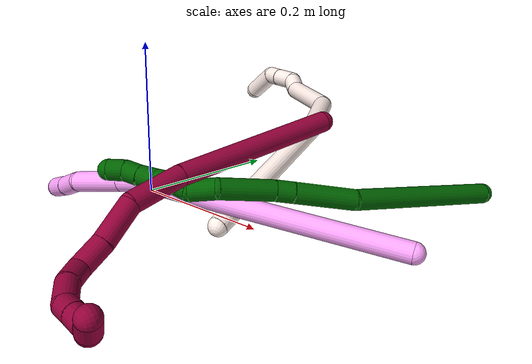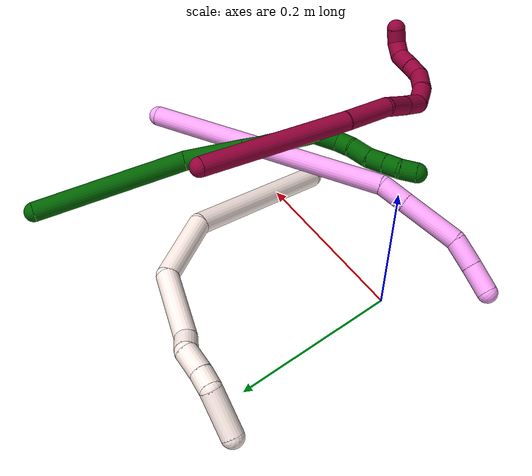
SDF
<sdf version="1.7">
 <world name="default">
  <model name="4">
   <static>0</static>
   <link name="4">
    <collision name="collision-cylinder-e_1_1_4">
     <pose>-0.077343 -0.04513 -0.132785 2.81397 -0.503981 -2.00013</pose>
     <geometry><cylinder><radius>0.0125</radius><length>0.320316</length></cylinder></geometry>
     <surface>
      <friction><ode><mu>1.16</mu><mu2>1.16</mu2><slip1>0</slip1><slip2>0</slip2></ode></friction>
      <contact><ode><kp>1e+06</kp><kd>1</kd><max_vel>0</max_vel><min_depth>0.001</min_depth></ode></contact>
     </surface>
    </collision>
    <visual name="visual-cylinder-e_1_1_4">
     <pose>-0.077343 -0.04513 -0.132785 2.81397 -0.503981 -2.00013</pose>
     <geometry><cylinder><radius>0.0125</radius><length>0.320316</length></cylinder></geometry>
     <material><ambient>1 0.65098 0.996078 1</ambient></material>
    </visual>
    <collision name="collision-cylinder-e_2_4_5">
     <pose>-0.159043 -0.091086 -0.282486 3.09274 -0.251879 -2.76038</pose>
     <geometry><cylinder><radius>0.0125</radius><length>0.034974</length></cylinder></geometry>
     <surface>
      <friction><ode><mu>1.16</mu><mu2>1.16</mu2><slip1>0</slip1><slip2>0</slip2></ode></friction>
      <contact><ode><kp>1e+06</kp><kd>1</kd><max_vel>0</max_vel><min_depth>0.001</min_depth></ode></contact>
     </surface>
    </collision>
    <visual name="visual-cylinder-e_2_4_5">
     <pose>-0.159043 -0.091086 -0.282486 3.09274 -0.251879 -2.76038</pose>
     <geometry><cylinder><radius>0.0125</radius><length>0.034974</length></cylinder></geometry>
     <material><ambient>1 0.65098 0.996078 1</ambient></material>
    </visual>
    <collision name="collision-cylinder-e_3_5_6">
     <pose>-0.172219 -0.09399 -0.335111 3.0835 -0.241682 -2.67186</pose>
     <geometry><cylinder><radius>0.0125</radius><length>0.073683</length></cylinder></geometry>
     <surface>
      <friction><ode><mu>1.16</mu><mu2>1.16</mu2><slip1>0</slip1><slip2>0</slip2></ode></friction>
      <contact><ode><kp>1e+06</kp><kd>1</kd><max_vel>0</max_vel><min_depth>0.001</min_depth></ode></contact>
     </surface>
    </collision>
    <visual name="visual-cylinder-e_3_5_6">
     <pose>-0.172219 -0.09399 -0.335111 3.0835 -0.241682 -2.67186</pose>
     <geometry><cylinder><radius>0.0125</radius><length>0.073683</length></cylinder></geometry>
     <material><ambient>1 0.65098 0.996078 1</ambient></material>
    </visual>
    <collision name="collision-cylinder-e_4_6_7">
     <pose>-0.181843 -0.091511 -0.387962 -2.88178 -0.045425 0.344324</pose>
     <geometry><cylinder><radius>0.0125</radius><length>0.035509</length></cylinder></geometry>
     <surface>
      <friction><ode><mu>1.16</mu><mu2>1.16</mu2><slip1>0</slip1><slip2>0</slip2></ode></friction>
      <contact><ode><kp>1e+06</kp><kd>1</kd><max_vel>0</max_vel><min_depth>0.001</min_depth></ode></contact>
     </surface>
    </collision>
    <visual name="visual-cylinder-e_4_6_7">
     <pose>-0.181843 -0.091511 -0.387962 -2.88178 -0.045425 0.344324</pose>
     <geometry><cylinder><radius>0.0125</radius><length>0.035509</length></cylinder></geometry>
     <material><ambient>1 0.65098 0.996078 1</ambient></material>
    </visual>
    <collision name="collision-cylinder-e_5_7_2">
     <pose>-0.184832 -0.081291 -0.421793 -2.81445 -0.123241 0.715472</pose>
     <geometry><cylinder><radius>0.0125</radius><length>0.035519</length></cylinder></geometry>
     <surface>
      <friction><ode><mu>1.16</mu><mu2>1.16</mu2><slip1>0</slip1><slip2>0</slip2></ode></friction>
      <contact><ode><kp>1e+06</kp><kd>1</kd><max_vel>0</max_vel><min_depth>0.001</min_depth></ode></contact>
     </surface>
    </collision>
    <visual name="visual-cylinder-e_5_7_2">
     <pose>-0.184832 -0.081291 -0.421793 -2.81445 -0.123241 0.715472</pose>
     <geometry><cylinder><radius>0.0125</radius><length>0.035519</length></cylinder></geometry>
     <material><ambient>1 0.65098 0.996078 1</ambient></material>
    </visual>
    <collision name="collision-sphere-2">
     <pose>-0.187015 -0.075627 -0.438483 0 -0 0</pose>
     <geometry><sphere><radius>0.0125</radius></sphere></geometry>
     <surface>
      <friction><ode><mu>1.16</mu><mu2>1.16</mu2><slip1>0</slip1><slip2>0</slip2></ode></friction>
      <contact><ode><kp>1e+06</kp><kd>1</kd><max_vel>0</max_vel><min_depth>0.001</min_depth></ode></contact>
     </surface>
    </collision>
    <visual name="visual-sphere-2">
     <pose>-0.187015 -0.075627 -0.438483 0 -0 0</pose>
     <geometry><sphere><radius>0.0125</radius></sphere></geometry>
     <material><ambient>1 0.65098 0.996078 1</ambient></material>
    </visual>
    <collision name="collision-sphere-7">
     <pose>-0.182649 -0.086954 -0.405103 0 -0 0</pose>
     <geometry><sphere><radius>0.0125</radius></sphere></geometry>
     <surface>
      <friction><ode><mu>1.16</mu><mu2>1.16</mu2><slip1>0</slip1><slip2>0</slip2></ode></friction>
      <contact><ode><kp>1e+06</kp><kd>1</kd><max_vel>0</max_vel><min_depth>0.001</min_depth></ode></contact>
     </surface>
    </collision>
    <visual name="visual-sphere-7">
     <pose>-0.182649 -0.086954 -0.405103 0 -0 0</pose>
     <geometry><sphere><radius>0.0125</radius></sphere></geometry>
     <material><ambient>1 0.65098 0.996078 1</ambient></material>
    </visual>
    <collision name="collision-sphere-6">
     <pose>-0.181037 -0.096067 -0.370821 0 -0 0</pose>
     <geometry><sphere><radius>0.0125</radius></sphere></geometry>
     <surface>
      <friction><ode><mu>1.16</mu><mu2>1.16</mu2><slip1>0</slip1><slip2>0</slip2></ode></friction>
      <contact><ode><kp>1e+06</kp><kd>1</kd><max_vel>0</max_vel><min_depth>0.001</min_depth></ode></contact>
     </surface>
    </collision>
    <visual name="visual-sphere-6">
     <pose>-0.181037 -0.096067 -0.370821 0 -0 0</pose>
     <geometry><sphere><radius>0.0125</radius></sphere></geometry>
     <material><ambient>1 0.65098 0.996078 1</ambient></material>
    </visual>
    <collision name="collision-sphere-5">
     <pose>-0.163402 -0.091913 -0.299401 0 -0 0</pose>
     <geometry><sphere><radius>0.0125</radius></sphere></geometry>
     <surface>
      <friction><ode><mu>1.16</mu><mu2>1.16</mu2><slip1>0</slip1><slip2>0</slip2></ode></friction>
      <contact><ode><kp>1e+06</kp><kd>1</kd><max_vel>0</max_vel><min_depth>0.001</min_depth></ode></contact>
     </surface>
    </collision>
    <visual name="visual-sphere-5">
     <pose>-0.163402 -0.091913 -0.299401 0 -0 0</pose>
     <geometry><sphere><radius>0.0125</radius></sphere></geometry>
     <material><ambient>1 0.65098 0.996078 1</ambient></material>
    </visual>
    <collision name="collision-sphere-1">
     <geometry><sphere><radius>0.0125</radius></sphere></geometry>
     <surface>
      <friction><ode><mu>1.16</mu><mu2>1.16</mu2><slip1>0</slip1><slip2>0</slip2></ode></friction>
      <contact><ode><kp>1e+06</kp><kd>1</kd><max_vel>0</max_vel><min_depth>0.001</min_depth></ode></contact>
     </surface>
    </collision>
    <visual name="visual-sphere-1">
     <geometry><sphere><radius>0.0125</radius></sphere></geometry>
     <material><ambient>1 0.65098 0.996078 1</ambient></material>
    </visual>
    <collision name="collision-sphere-4">
     <pose>-0.154685 -0.090259 -0.265571 0 -0 0</pose>
     <geometry><sphere><radius>0.0125</radius></sphere></geometry>
     <surface>
      <friction><ode><mu>1.16</mu><mu2>1.16</mu2><slip1>0</slip1><slip2>0</slip2></ode></friction>
      <contact><ode><kp>1e+06</kp><kd>1</kd><max_vel>0</max_vel><min_depth>0.001</min_depth></ode></contact>
     </surface>
    </collision>
    <visual name="visual-sphere-4">
     <pose>-0.154685 -0.090259 -0.265571 0 -0 0</pose>
     <geometry><sphere><radius>0.0125</radius></sphere></geometry>
     <material><ambient>1 0.65098 0.996078 1</ambient></material>
    </visual>
    <inertial>
     <pose>-0.112096 -0.061407 -0.211725 0 -0 0</pose>
     <mass>0.5</mass>
     <inertia>
      <ixx>-0.003248</ixx>
      <ixy>0</ixy>
      <ixz>0</ixz>
      <iyy>-0.000707</iyy>
      <iyz>0</iyz>
      <izz>0.00208</izz>
     </inertia>
    </inertial>
   </link>
   <pose>0.387581 0.052008 0.011565 -0.285764 1.13312 -0.097777</pose>
  </model>
  <model name="6">
   <static>0</static>
   <link name="6">
    <collision name="collision-cylinder-e_1_1_4">
     <pose>-0.022543 -0.089345 -0.03146 1.90935 -0.233645 -0.3285</pose>
     <geometry><cylinder><radius>0.0125</radius><length>0.194735</length></cylinder></geometry>
     <surface>
      <friction><ode><mu>1.16</mu><mu2>1.16</mu2><slip1>0</slip1><slip2>0</slip2></ode></friction>
      <contact><ode><kp>1e+06</kp><kd>1</kd><max_vel>0</max_vel><min_depth>0.001</min_depth></ode></contact>
     </surface>
    </collision>
    <visual name="visual-cylinder-e_1_1_4">
     <pose>-0.022543 -0.089345 -0.03146 1.90935 -0.233645 -0.3285</pose>
     <geometry><cylinder><radius>0.0125</radius><length>0.194735</length></cylinder></geometry>
     <material><ambient>0 0.392157 0.003922 1</ambient></material>
    </visual>
    <collision name="collision-cylinder-e_2_4_5">
     <pose>-0.061493 -0.211787 -0.069842 1.77697 -0.451762 -0.551275</pose>
     <geometry><cylinder><radius>0.0125</radius><length>0.075168</length></cylinder></geometry>
     <surface>
      <friction><ode><mu>1.16</mu><mu2>1.16</mu2><slip1>0</slip1><slip2>0</slip2></ode></friction>
      <contact><ode><kp>1e+06</kp><kd>1</kd><max_vel>0</max_vel><min_depth>0.001</min_depth></ode></contact>
     </surface>
    </collision>
    <visual name="visual-cylinder-e_2_4_5">
     <pose>-0.061493 -0.211787 -0.069842 1.77697 -0.451762 -0.551275</pose>
     <geometry><cylinder><radius>0.0125</radius><length>0.075168</length></cylinder></geometry>
     <material><ambient>0 0.392157 0.003922 1</ambient></material>
    </visual>
    <collision name="collision-cylinder-e_3_5_6">
     <pose>-0.08304 -0.254349 -0.07882 1.78474 -0.487901 -0.599012</pose>
     <geometry><cylinder><radius>0.0125</radius><length>0.021929</length></cylinder></geometry>
     <surface>
      <friction><ode><mu>1.16</mu><mu2>1.16</mu2><slip1>0</slip1><slip2>0</slip2></ode></friction>
      <contact><ode><kp>1e+06</kp><kd>1</kd><max_vel>0</max_vel><min_depth>0.001</min_depth></ode></contact>
     </surface>
    </collision>
    <visual name="visual-cylinder-e_3_5_6">
     <pose>-0.08304 -0.254349 -0.07882 1.78474 -0.487901 -0.599012</pose>
     <geometry><cylinder><radius>0.0125</radius><length>0.021929</length></cylinder></geometry>
     <material><ambient>0 0.392157 0.003922 1</ambient></material>
    </visual>
    <collision name="collision-cylinder-e_4_6_7">
     <pose>-0.100193 -0.293712 -0.089723 1.85848 -0.36773 -0.488001</pose>
     <geometry><cylinder><radius>0.0125</radius><length>0.066828</length></cylinder></geometry>
     <surface>
      <friction><ode><mu>1.16</mu><mu2>1.16</mu2><slip1>0</slip1><slip2>0</slip2></ode></friction>
      <contact><ode><kp>1e+06</kp><kd>1</kd><max_vel>0</max_vel><min_depth>0.001</min_depth></ode></contact>
     </surface>
    </collision>
    <visual name="visual-cylinder-e_4_6_7">
     <pose>-0.100193 -0.293712 -0.089723 1.85848 -0.36773 -0.488001</pose>
     <geometry><cylinder><radius>0.0125</radius><length>0.066828</length></cylinder></geometry>
     <material><ambient>0 0.392157 0.003922 1</ambient></material>
    </visual>
    <collision name="collision-cylinder-e_5_7_8">
     <pose>-0.124692 -0.332111 -0.103706 2.11427 -0.898897 -1.41479</pose>
     <geometry><cylinder><radius>0.0125</radius><length>0.031909</length></cylinder></geometry>
     <surface>
      <friction><ode><mu>1.16</mu><mu2>1.16</mu2><slip1>0</slip1><slip2>0</slip2></ode></friction>
      <contact><ode><kp>1e+06</kp><kd>1</kd><max_vel>0</max_vel><min_depth>0.001</min_depth></ode></contact>
     </surface>
    </collision>
    <visual name="visual-cylinder-e_5_7_8">
     <pose>-0.124692 -0.332111 -0.103706 2.11427 -0.898897 -1.41479</pose>
     <geometry><cylinder><radius>0.0125</radius><length>0.031909</length></cylinder></geometry>
     <material><ambient>0 0.392157 0.003922 1</ambient></material>
    </visual>
    <collision name="collision-cylinder-e_6_8_9">
     <pose>-0.146624 -0.344657 -0.107233 1.19232 -1.13896 -0.819622</pose>
     <geometry><cylinder><radius>0.0125</radius><length>0.020801</length></cylinder></geometry>
     <surface>
      <friction><ode><mu>1.16</mu><mu2>1.16</mu2><slip1>0</slip1><slip2>0</slip2></ode></friction>
      <contact><ode><kp>1e+06</kp><kd>1</kd><max_vel>0</max_vel><min_depth>0.001</min_depth></ode></contact>
     </surface>
    </collision>
    <visual name="visual-cylinder-e_6_8_9">
     <pose>-0.146624 -0.344657 -0.107233 1.19232 -1.13896 -0.819622</pose>
     <geometry><cylinder><radius>0.0125</radius><length>0.020801</length></cylinder></geometry>
     <material><ambient>0 0.392157 0.003922 1</ambient></material>
    </visual>
    <collision name="collision-cylinder-e_7_9_10">
     <pose>-0.168406 -0.352492 -0.10598 1.66446 -1.27142 -1.36217</pose>
     <geometry><cylinder><radius>0.0125</radius><length>0.02582</length></cylinder></geometry>
     <surface>
      <friction><ode><mu>1.16</mu><mu2>1.16</mu2><slip1>0</slip1><slip2>0</slip2></ode></friction>
      <contact><ode><kp>1e+06</kp><kd>1</kd><max_vel>0</max_vel><min_depth>0.001</min_depth></ode></contact>
     </surface>
    </collision>
    <visual name="visual-cylinder-e_7_9_10">
     <pose>-0.168406 -0.352492 -0.10598 1.66446 -1.27142 -1.36217</pose>
     <geometry><cylinder><radius>0.0125</radius><length>0.02582</length></cylinder></geometry>
     <material><ambient>0 0.392157 0.003922 1</ambient></material>
    </visual>
    <collision name="collision-cylinder-e_8_10_11">
     <pose>-0.190323 -0.361807 -0.10668 1.63287 -1.04703 -1.10163</pose>
     <geometry><cylinder><radius>0.0125</radius><length>0.02213</length></cylinder></geometry>
     <surface>
      <friction><ode><mu>1.16</mu><mu2>1.16</mu2><slip1>0</slip1><slip2>0</slip2></ode></friction>
      <contact><ode><kp>1e+06</kp><kd>1</kd><max_vel>0</max_vel><min_depth>0.001</min_depth></ode></contact>
     </surface>
    </collision>
    <visual name="visual-cylinder-e_8_10_11">
     <pose>-0.190323 -0.361807 -0.10668 1.63287 -1.04703 -1.10163</pose>
     <geometry><cylinder><radius>0.0125</radius><length>0.02213</length></cylinder></geometry>
     <material><ambient>0 0.392157 0.003922 1</ambient></material>
    </visual>
    <collision name="collision-cylinder-e_9_11_12">
     <pose>-0.208743 -0.37196 -0.10631 1.41797 -1.08341 -0.952983</pose>
     <geometry><cylinder><radius>0.0125</radius><length>0.020007</length></cylinder></geometry>
     <surface>
      <friction><ode><mu>1.16</mu><mu2>1.16</mu2><slip1>0</slip1><slip2>0</slip2></ode></friction>
      <contact><ode><kp>1e+06</kp><kd>1</kd><max_vel>0</max_vel><min_depth>0.001</min_depth></ode></contact>
     </surface>
    </collision>
    <visual name="visual-cylinder-e_9_11_12">
     <pose>-0.208743 -0.37196 -0.10631 1.41797 -1.08341 -0.952983</pose>
     <geometry><cylinder><radius>0.0125</radius><length>0.020007</length></cylinder></geometry>
     <material><ambient>0 0.392157 0.003922 1</ambient></material>
    </visual>
    <collision name="collision-cylinder-e_10_12_2">
     <pose>-0.225414 -0.382915 -0.107942 1.92586 -0.859807 -1.16537</pose>
     <geometry><cylinder><radius>0.0125</radius><length>0.020673</length></cylinder></geometry>
     <surface>
      <friction><ode><mu>1.16</mu><mu2>1.16</mu2><slip1>0</slip1><slip2>0</slip2></ode></friction>
      <contact><ode><kp>1e+06</kp><kd>1</kd><max_vel>0</max_vel><min_depth>0.001</min_depth></ode></contact>
     </surface>
    </collision>
    <visual name="visual-cylinder-e_10_12_2">
     <pose>-0.225414 -0.382915 -0.107942 1.92586 -0.859807 -1.16537</pose>
     <geometry><cylinder><radius>0.0125</radius><length>0.020673</length></cylinder></geometry>
     <material><ambient>0 0.392157 0.003922 1</ambient></material>
    </visual>
    <collision name="collision-sphere-2">
     <pose>-0.233246 -0.38924 -0.110287 0 -0 0</pose>
     <geometry><sphere><radius>0.0125</radius></sphere></geometry>
     <surface>
      <friction><ode><mu>1.16</mu><mu2>1.16</mu2><slip1>0</slip1><slip2>0</slip2></ode></friction>
      <contact><ode><kp>1e+06</kp><kd>1</kd><max_vel>0</max_vel><min_depth>0.001</min_depth></ode></contact>
     </surface>
    </collision>
    <visual name="visual-sphere-2">
     <pose>-0.233246 -0.38924 -0.110287 0 -0 0</pose>
     <geometry><sphere><radius>0.0125</radius></sphere></geometry>
     <material><ambient>0 0.392157 0.003922 1</ambient></material>
    </visual>
    <collision name="collision-sphere-12">
     <pose>-0.217582 -0.37659 -0.105597 0 -0 0</pose>
     <geometry><sphere><radius>0.0125</radius></sphere></geometry>
     <surface>
      <friction><ode><mu>1.16</mu><mu2>1.16</mu2><slip1>0</slip1><slip2>0</slip2></ode></friction>
      <contact><ode><kp>1e+06</kp><kd>1</kd><max_vel>0</max_vel><min_depth>0.001</min_depth></ode></contact>
     </surface>
    </collision>
    <visual name="visual-sphere-12">
     <pose>-0.217582 -0.37659 -0.105597 0 -0 0</pose>
     <geometry><sphere><radius>0.0125</radius></sphere></geometry>
     <material><ambient>0 0.392157 0.003922 1</ambient></material>
    </visual>
    <collision name="collision-sphere-11">
     <pose>-0.199905 -0.36733 -0.107023 0 -0 0</pose>
     <geometry><sphere><radius>0.0125</radius></sphere></geometry>
     <surface>
      <friction><ode><mu>1.16</mu><mu2>1.16</mu2><slip1>0</slip1><slip2>0</slip2></ode></friction>
      <contact><ode><kp>1e+06</kp><kd>1</kd><max_vel>0</max_vel><min_depth>0.001</min_depth></ode></contact>
     </surface>
    </collision>
    <visual name="visual-sphere-11">
     <pose>-0.199905 -0.36733 -0.107023 0 -0 0</pose>
     <geometry><sphere><radius>0.0125</radius></sphere></geometry>
     <material><ambient>0 0.392157 0.003922 1</ambient></material>
    </visual>
    <collision name="collision-sphere-10">
     <pose>-0.180742 -0.356283 -0.106337 0 -0 0</pose>
     <geometry><sphere><radius>0.0125</radius></sphere></geometry>
     <surface>
      <friction><ode><mu>1.16</mu><mu2>1.16</mu2><slip1>0</slip1><slip2>0</slip2></ode></friction>
      <contact><ode><kp>1e+06</kp><kd>1</kd><max_vel>0</max_vel><min_depth>0.001</min_depth></ode></contact>
     </surface>
    </collision>
    <visual name="visual-sphere-10">
     <pose>-0.180742 -0.356283 -0.106337 0 -0 0</pose>
     <geometry><sphere><radius>0.0125</radius></sphere></geometry>
     <material><ambient>0 0.392157 0.003922 1</ambient></material>
    </visual>
    <collision name="collision-sphere-9">
     <pose>-0.15607 -0.348702 -0.105624 0 -0 0</pose>
     <geometry><sphere><radius>0.0125</radius></sphere></geometry>
     <surface>
      <friction><ode><mu>1.16</mu><mu2>1.16</mu2><slip1>0</slip1><slip2>0</slip2></ode></friction>
      <contact><ode><kp>1e+06</kp><kd>1</kd><max_vel>0</max_vel><min_depth>0.001</min_depth></ode></contact>
     </surface>
    </collision>
    <visual name="visual-sphere-9">
     <pose>-0.15607 -0.348702 -0.105624 0 -0 0</pose>
     <geometry><sphere><radius>0.0125</radius></sphere></geometry>
     <material><ambient>0 0.392157 0.003922 1</ambient></material>
    </visual>
    <collision name="collision-sphere-4">
     <pose>-0.045086 -0.17869 -0.062919 0 -0 0</pose>
     <geometry><sphere><radius>0.0125</radius></sphere></geometry>
     <surface>
      <friction><ode><mu>1.16</mu><mu2>1.16</mu2><slip1>0</slip1><slip2>0</slip2></ode></friction>
      <contact><ode><kp>1e+06</kp><kd>1</kd><max_vel>0</max_vel><min_depth>0.001</min_depth></ode></contact>
     </surface>
    </collision>
    <visual name="visual-sphere-4">
     <pose>-0.045086 -0.17869 -0.062919 0 -0 0</pose>
     <geometry><sphere><radius>0.0125</radius></sphere></geometry>
     <material><ambient>0 0.392157 0.003922 1</ambient></material>
    </visual>
    <collision name="collision-sphere-1">
     <geometry><sphere><radius>0.0125</radius></sphere></geometry>
     <surface>
      <friction><ode><mu>1.16</mu><mu2>1.16</mu2><slip1>0</slip1><slip2>0</slip2></ode></friction>
      <contact><ode><kp>1e+06</kp><kd>1</kd><max_vel>0</max_vel><min_depth>0.001</min_depth></ode></contact>
     </surface>
    </collision>
    <visual name="visual-sphere-1">
     <geometry><sphere><radius>0.0125</radius></sphere></geometry>
     <material><ambient>0 0.392157 0.003922 1</ambient></material>
    </visual>
    <collision name="collision-sphere-8">
     <pose>-0.137179 -0.340612 -0.108841 0 -0 0</pose>
     <geometry><sphere><radius>0.0125</radius></sphere></geometry>
     <surface>
      <friction><ode><mu>1.16</mu><mu2>1.16</mu2><slip1>0</slip1><slip2>0</slip2></ode></friction>
      <contact><ode><kp>1e+06</kp><kd>1</kd><max_vel>0</max_vel><min_depth>0.001</min_depth></ode></contact>
     </surface>
    </collision>
    <visual name="visual-sphere-8">
     <pose>-0.137179 -0.340612 -0.108841 0 -0 0</pose>
     <geometry><sphere><radius>0.0125</radius></sphere></geometry>
     <material><ambient>0 0.392157 0.003922 1</ambient></material>
    </visual>
    <collision name="collision-sphere-5">
     <pose>-0.077901 -0.244884 -0.076764 0 -0 0</pose>
     <geometry><sphere><radius>0.0125</radius></sphere></geometry>
     <surface>
      <friction><ode><mu>1.16</mu><mu2>1.16</mu2><slip1>0</slip1><slip2>0</slip2></ode></friction>
      <contact><ode><kp>1e+06</kp><kd>1</kd><max_vel>0</max_vel><min_depth>0.001</min_depth></ode></contact>
     </surface>
    </collision>
    <visual name="visual-sphere-5">
     <pose>-0.077901 -0.244884 -0.076764 0 -0 0</pose>
     <geometry><sphere><radius>0.0125</radius></sphere></geometry>
     <material><ambient>0 0.392157 0.003922 1</ambient></material>
    </visual>
    <collision name="collision-sphere-6">
     <pose>-0.08818 -0.263813 -0.080876 0 -0 0</pose>
     <geometry><sphere><radius>0.0125</radius></sphere></geometry>
     <surface>
      <friction><ode><mu>1.16</mu><mu2>1.16</mu2><slip1>0</slip1><slip2>0</slip2></ode></friction>
      <contact><ode><kp>1e+06</kp><kd>1</kd><max_vel>0</max_vel><min_depth>0.001</min_depth></ode></contact>
     </surface>
    </collision>
    <visual name="visual-sphere-6">
     <pose>-0.08818 -0.263813 -0.080876 0 -0 0</pose>
     <geometry><sphere><radius>0.0125</radius></sphere></geometry>
     <material><ambient>0 0.392157 0.003922 1</ambient></material>
    </visual>
    <collision name="collision-sphere-7">
     <pose>-0.112205 -0.323611 -0.09857 0 -0 0</pose>
     <geometry><sphere><radius>0.0125</radius></sphere></geometry>
     <surface>
      <friction><ode><mu>1.16</mu><mu2>1.16</mu2><slip1>0</slip1><slip2>0</slip2></ode></friction>
      <contact><ode><kp>1e+06</kp><kd>1</kd><max_vel>0</max_vel><min_depth>0.001</min_depth></ode></contact>
     </surface>
    </collision>
    <visual name="visual-sphere-7">
     <pose>-0.112205 -0.323611 -0.09857 0 -0 0</pose>
     <geometry><sphere><radius>0.0125</radius></sphere></geometry>
     <material><ambient>0 0.392157 0.003922 1</ambient></material>
    </visual>
    <inertial>
     <pose>-0.083908 -0.217513 -0.068192 0 -0 0</pose>
     <mass>0.5</mass>
     <inertia>
      <ixx>0.000379</ixx>
      <ixy>0</ixy>
      <ixz>0</ixz>
      <iyy>-0.000406</iyy>
      <iyz>0</iyz>
      <izz>0.000811</izz>
     </inertia>
    </inertial>
   </link>
   <pose>0.34459 0.263875 0.015585 -0.485093 -0.115159 -0.060338</pose>
  </model>
  <model name="8">
   <static>0</static>
   <link name="8">
    <collision name="collision-cylinder-e_1_1_4">
     <pose>0.001731 -0.011531 0.100721 0.113986 0.017071 0.000974</pose>
     <geometry><cylinder><radius>0.0125</radius><length>0.202788</length></cylinder></geometry>
     <surface>
      <friction><ode><mu>1.16</mu><mu2>1.16</mu2><slip1>0</slip1><slip2>0</slip2></ode></friction>
      <contact><ode><kp>1e+06</kp><kd>1</kd><max_vel>0</max_vel><min_depth>0.001</min_depth></ode></contact>
     </surface>
    </collision>
    <visual name="visual-cylinder-e_1_1_4">
     <pose>0.001731 -0.011531 0.100721 0.113986 0.017071 0.000974</pose>
     <geometry><cylinder><radius>0.0125</radius><length>0.202788</length></cylinder></geometry>
     <material><ambient>0.584314 0 0.227451 1</ambient></material>
    </visual>
    <collision name="collision-cylinder-e_2_4_5">
     <pose>0.007876 -0.024025 0.234271 0.029344 0.133626 0.001964</pose>
     <geometry><cylinder><radius>0.0125</radius><length>0.066275</length></cylinder></geometry>
     <surface>
      <friction><ode><mu>1.16</mu><mu2>1.16</mu2><slip1>0</slip1><slip2>0</slip2></ode></friction>
      <contact><ode><kp>1e+06</kp><kd>1</kd><max_vel>0</max_vel><min_depth>0.001</min_depth></ode></contact>
     </surface>
    </collision>
    <visual name="visual-cylinder-e_2_4_5">
     <pose>0.007876 -0.024025 0.234271 0.029344 0.133626 0.001964</pose>
     <geometry><cylinder><radius>0.0125</radius><length>0.066275</length></cylinder></geometry>
     <material><ambient>0.584314 0 0.227451 1</ambient></material>
    </visual>
    <collision name="collision-cylinder-e_3_5_6">
     <pose>0.025604 -0.024214 0.28818 -0.036759 0.562956 -0.01063</pose>
     <geometry><cylinder><radius>0.0125</radius><length>0.04989</length></cylinder></geometry>
     <surface>
      <friction><ode><mu>1.16</mu><mu2>1.16</mu2><slip1>0</slip1><slip2>0</slip2></ode></friction>
      <contact><ode><kp>1e+06</kp><kd>1</kd><max_vel>0</max_vel><min_depth>0.001</min_depth></ode></contact>
     </surface>
    </collision>
    <visual name="visual-cylinder-e_3_5_6">
     <pose>0.025604 -0.024214 0.28818 -0.036759 0.562956 -0.01063</pose>
     <geometry><cylinder><radius>0.0125</radius><length>0.04989</length></cylinder></geometry>
     <material><ambient>0.584314 0 0.227451 1</ambient></material>
    </visual>
    <collision name="collision-cylinder-e_4_6_7">
     <pose>0.046176 -0.023759 0.324787 0.020678 0.437258 0.004594</pose>
     <geometry><cylinder><radius>0.0125</radius><length>0.034283</length></cylinder></geometry>
     <surface>
      <friction><ode><mu>1.16</mu><mu2>1.16</mu2><slip1>0</slip1><slip2>0</slip2></ode></friction>
      <contact><ode><kp>1e+06</kp><kd>1</kd><max_vel>0</max_vel><min_depth>0.001</min_depth></ode></contact>
     </surface>
    </collision>
    <visual name="visual-cylinder-e_4_6_7">
     <pose>0.046176 -0.023759 0.324787 0.020678 0.437258 0.004594</pose>
     <geometry><cylinder><radius>0.0125</radius><length>0.034283</length></cylinder></geometry>
     <material><ambient>0.584314 0 0.227451 1</ambient></material>
    </visual>
    <collision name="collision-cylinder-e_5_7_8">
     <pose>0.05538 -0.015374 0.351485 -0.661986 0.13654 -0.046984</pose>
     <geometry><cylinder><radius>0.0125</radius><length>0.028595</length></cylinder></geometry>
     <surface>
      <friction><ode><mu>1.16</mu><mu2>1.16</mu2><slip1>0</slip1><slip2>0</slip2></ode></friction>
      <contact><ode><kp>1e+06</kp><kd>1</kd><max_vel>0</max_vel><min_depth>0.001</min_depth></ode></contact>
     </surface>
    </collision>
    <visual name="visual-cylinder-e_5_7_8">
     <pose>0.05538 -0.015374 0.351485 -0.661986 0.13654 -0.046984</pose>
     <geometry><cylinder><radius>0.0125</radius><length>0.028595</length></cylinder></geometry>
     <material><ambient>0.584314 0 0.227451 1</ambient></material>
    </visual>
    <collision name="collision-cylinder-e_6_8_9">
     <pose>0.062878 0.005265 0.371777 -0.918185 0.354057 -0.17641</pose>
     <geometry><cylinder><radius>0.0125</radius><length>0.032023</length></cylinder></geometry>
     <surface>
      <friction><ode><mu>1.16</mu><mu2>1.16</mu2><slip1>0</slip1><slip2>0</slip2></ode></friction>
      <contact><ode><kp>1e+06</kp><kd>1</kd><max_vel>0</max_vel><min_depth>0.001</min_depth></ode></contact>
     </surface>
    </collision>
    <visual name="visual-cylinder-e_6_8_9">
     <pose>0.062878 0.005265 0.371777 -0.918185 0.354057 -0.17641</pose>
     <geometry><cylinder><radius>0.0125</radius><length>0.032023</length></cylinder></geometry>
     <material><ambient>0.584314 0 0.227451 1</ambient></material>
    </visual>
    <collision name="collision-cylinder-e_7_9_10">
     <pose>0.071275 0.027212 0.381896 -1.47138 0.275544 -0.249711</pose>
     <geometry><cylinder><radius>0.0125</radius><length>0.020919</length></cylinder></geometry>
     <surface>
      <friction><ode><mu>1.16</mu><mu2>1.16</mu2><slip1>0</slip1><slip2>0</slip2></ode></friction>
      <contact><ode><kp>1e+06</kp><kd>1</kd><max_vel>0</max_vel><min_depth>0.001</min_depth></ode></contact>
     </surface>
    </collision>
    <visual name="visual-cylinder-e_7_9_10">
     <pose>0.071275 0.027212 0.381896 -1.47138 0.275544 -0.249711</pose>
     <geometry><cylinder><radius>0.0125</radius><length>0.020919</length></cylinder></geometry>
     <material><ambient>0.584314 0 0.227451 1</ambient></material>
    </visual>
    <collision name="collision-cylinder-e_8_10_11">
     <pose>0.078006 0.048783 0.384108 -1.46619 0.322731 -0.291098</pose>
     <geometry><cylinder><radius>0.0125</radius><length>0.024503</length></cylinder></geometry>
     <surface>
      <friction><ode><mu>1.16</mu><mu2>1.16</mu2><slip1>0</slip1><slip2>0</slip2></ode></friction>
      <contact><ode><kp>1e+06</kp><kd>1</kd><max_vel>0</max_vel><min_depth>0.001</min_depth></ode></contact>
     </surface>
    </collision>
    <visual name="visual-cylinder-e_8_10_11">
     <pose>0.078006 0.048783 0.384108 -1.46619 0.322731 -0.291098</pose>
     <geometry><cylinder><radius>0.0125</radius><length>0.024503</length></cylinder></geometry>
     <material><ambient>0.584314 0 0.227451 1</ambient></material>
    </visual>
    <collision name="collision-cylinder-e_9_11_12">
     <pose>0.080859 0.069843 0.389119 -1.19075 -0.100595 0.068171</pose>
     <geometry><cylinder><radius>0.0125</radius><length>0.020574</length></cylinder></geometry>
     <surface>
      <friction><ode><mu>1.16</mu><mu2>1.16</mu2><slip1>0</slip1><slip2>0</slip2></ode></friction>
      <contact><ode><kp>1e+06</kp><kd>1</kd><max_vel>0</max_vel><min_depth>0.001</min_depth></ode></contact>
     </surface>
    </collision>
    <visual name="visual-cylinder-e_9_11_12">
     <pose>0.080859 0.069843 0.389119 -1.19075 -0.100595 0.068171</pose>
     <geometry><cylinder><radius>0.0125</radius><length>0.020574</length></cylinder></geometry>
     <material><ambient>0.584314 0 0.227451 1</ambient></material>
    </visual>
    <collision name="collision-cylinder-e_10_12_2">
     <pose>0.072386 0.086016 0.394214 -1.37843 -0.830804 0.69721</pose>
     <geometry><cylinder><radius>0.0125</radius><length>0.02015</length></cylinder></geometry>
     <surface>
      <friction><ode><mu>1.16</mu><mu2>1.16</mu2><slip1>0</slip1><slip2>0</slip2></ode></friction>
      <contact><ode><kp>1e+06</kp><kd>1</kd><max_vel>0</max_vel><min_depth>0.001</min_depth></ode></contact>
     </surface>
    </collision>
    <visual name="visual-cylinder-e_10_12_2">
     <pose>0.072386 0.086016 0.394214 -1.37843 -0.830804 0.69721</pose>
     <geometry><cylinder><radius>0.0125</radius><length>0.02015</length></cylinder></geometry>
     <material><ambient>0.584314 0 0.227451 1</ambient></material>
    </visual>
    <collision name="collision-sphere-2">
     <pose>0.064945 0.092684 0.395513 0 -0 0</pose>
     <geometry><sphere><radius>0.0125</radius></sphere></geometry>
     <surface>
      <friction><ode><mu>1.16</mu><mu2>1.16</mu2><slip1>0</slip1><slip2>0</slip2></ode></friction>
      <contact><ode><kp>1e+06</kp><kd>1</kd><max_vel>0</max_vel><min_depth>0.001</min_depth></ode></contact>
     </surface>
    </collision>
    <visual name="visual-sphere-2">
     <pose>0.064945 0.092684 0.395513 0 -0 0</pose>
     <geometry><sphere><radius>0.0125</radius></sphere></geometry>
     <material><ambient>0.584314 0 0.227451 1</ambient></material>
    </visual>
    <collision name="collision-sphere-12">
     <pose>0.079826 0.079348 0.392915 0 -0 0</pose>
     <geometry><sphere><radius>0.0125</radius></sphere></geometry>
     <surface>
      <friction><ode><mu>1.16</mu><mu2>1.16</mu2><slip1>0</slip1><slip2>0</slip2></ode></friction>
      <contact><ode><kp>1e+06</kp><kd>1</kd><max_vel>0</max_vel><min_depth>0.001</min_depth></ode></contact>
     </surface>
    </collision>
    <visual name="visual-sphere-12">
     <pose>0.079826 0.079348 0.392915 0 -0 0</pose>
     <geometry><sphere><radius>0.0125</radius></sphere></geometry>
     <material><ambient>0.584314 0 0.227451 1</ambient></material>
    </visual>
    <collision name="collision-sphere-11">
     <pose>0.081892 0.060339 0.385322 0 -0 0</pose>
     <geometry><sphere><radius>0.0125</radius></sphere></geometry>
     <surface>
      <friction><ode><mu>1.16</mu><mu2>1.16</mu2><slip1>0</slip1><slip2>0</slip2></ode></friction>
      <contact><ode><kp>1e+06</kp><kd>1</kd><max_vel>0</max_vel><min_depth>0.001</min_depth></ode></contact>
     </surface>
    </collision>
    <visual name="visual-sphere-11">
     <pose>0.081892 0.060339 0.385322 0 -0 0</pose>
     <geometry><sphere><radius>0.0125</radius></sphere></geometry>
     <material><ambient>0.584314 0 0.227451 1</ambient></material>
    </visual>
    <collision name="collision-sphere-10">
     <pose>0.07412 0.037227 0.382895 0 -0 0</pose>
     <geometry><sphere><radius>0.0125</radius></sphere></geometry>
     <surface>
      <friction><ode><mu>1.16</mu><mu2>1.16</mu2><slip1>0</slip1><slip2>0</slip2></ode></friction>
      <contact><ode><kp>1e+06</kp><kd>1</kd><max_vel>0</max_vel><min_depth>0.001</min_depth></ode></contact>
     </surface>
    </collision>
    <visual name="visual-sphere-10">
     <pose>0.07412 0.037227 0.382895 0 -0 0</pose>
     <geometry><sphere><radius>0.0125</radius></sphere></geometry>
     <material><ambient>0.584314 0 0.227451 1</ambient></material>
    </visual>
    <collision name="collision-sphere-9">
     <pose>0.068429 0.017197 0.380897 0 -0 0</pose>
     <geometry><sphere><radius>0.0125</radius></sphere></geometry>
     <surface>
      <friction><ode><mu>1.16</mu><mu2>1.16</mu2><slip1>0</slip1><slip2>0</slip2></ode></friction>
      <contact><ode><kp>1e+06</kp><kd>1</kd><max_vel>0</max_vel><min_depth>0.001</min_depth></ode></contact>
     </surface>
    </collision>
    <visual name="visual-sphere-9">
     <pose>0.068429 0.017197 0.380897 0 -0 0</pose>
     <geometry><sphere><radius>0.0125</radius></sphere></geometry>
     <material><ambient>0.584314 0 0.227451 1</ambient></material>
    </visual>
    <collision name="collision-sphere-4">
     <pose>0.003462 -0.023062 0.201443 0 -0 0</pose>
     <geometry><sphere><radius>0.0125</radius></sphere></geometry>
     <surface>
      <friction><ode><mu>1.16</mu><mu2>1.16</mu2><slip1>0</slip1><slip2>0</slip2></ode></friction>
      <contact><ode><kp>1e+06</kp><kd>1</kd><max_vel>0</max_vel><min_depth>0.001</min_depth></ode></contact>
     </surface>
    </collision>
    <visual name="visual-sphere-4">
     <pose>0.003462 -0.023062 0.201443 0 -0 0</pose>
     <geometry><sphere><radius>0.0125</radius></sphere></geometry>
     <material><ambient>0.584314 0 0.227451 1</ambient></material>
    </visual>
    <collision name="collision-sphere-1">
     <geometry><sphere><radius>0.0125</radius></sphere></geometry>
     <surface>
      <friction><ode><mu>1.16</mu><mu2>1.16</mu2><slip1>0</slip1><slip2>0</slip2></ode></friction>
      <contact><ode><kp>1e+06</kp><kd>1</kd><max_vel>0</max_vel><min_depth>0.001</min_depth></ode></contact>
     </surface>
    </collision>
    <visual name="visual-sphere-1">
     <geometry><sphere><radius>0.0125</radius></sphere></geometry>
     <material><ambient>0.584314 0 0.227451 1</ambient></material>
    </visual>
    <collision name="collision-sphere-8">
     <pose>0.057326 -0.006667 0.362657 0 -0 0</pose>
     <geometry><sphere><radius>0.0125</radius></sphere></geometry>
     <surface>
      <friction><ode><mu>1.16</mu><mu2>1.16</mu2><slip1>0</slip1><slip2>0</slip2></ode></friction>
      <contact><ode><kp>1e+06</kp><kd>1</kd><max_vel>0</max_vel><min_depth>0.001</min_depth></ode></contact>
     </surface>
    </collision>
    <visual name="visual-sphere-8">
     <pose>0.057326 -0.006667 0.362657 0 -0 0</pose>
     <geometry><sphere><radius>0.0125</radius></sphere></geometry>
     <material><ambient>0.584314 0 0.227451 1</ambient></material>
    </visual>
    <collision name="collision-sphere-5">
     <pose>0.012291 -0.024989 0.267099 0 -0 0</pose>
     <geometry><sphere><radius>0.0125</radius></sphere></geometry>
     <surface>
      <friction><ode><mu>1.16</mu><mu2>1.16</mu2><slip1>0</slip1><slip2>0</slip2></ode></friction>
      <contact><ode><kp>1e+06</kp><kd>1</kd><max_vel>0</max_vel><min_depth>0.001</min_depth></ode></contact>
     </surface>
    </collision>
    <visual name="visual-sphere-5">
     <pose>0.012291 -0.024989 0.267099 0 -0 0</pose>
     <geometry><sphere><radius>0.0125</radius></sphere></geometry>
     <material><ambient>0.584314 0 0.227451 1</ambient></material>
    </visual>
    <collision name="collision-sphere-6">
     <pose>0.038917 -0.023438 0.309261 0 -0 0</pose>
     <geometry><sphere><radius>0.0125</radius></sphere></geometry>
     <surface>
      <friction><ode><mu>1.16</mu><mu2>1.16</mu2><slip1>0</slip1><slip2>0</slip2></ode></friction>
      <contact><ode><kp>1e+06</kp><kd>1</kd><max_vel>0</max_vel><min_depth>0.001</min_depth></ode></contact>
     </surface>
    </collision>
    <visual name="visual-sphere-6">
     <pose>0.038917 -0.023438 0.309261 0 -0 0</pose>
     <geometry><sphere><radius>0.0125</radius></sphere></geometry>
     <material><ambient>0.584314 0 0.227451 1</ambient></material>
    </visual>
    <collision name="collision-sphere-7">
     <pose>0.053434 -0.02408 0.340312 0 -0 0</pose>
     <geometry><sphere><radius>0.0125</radius></sphere></geometry>
     <surface>
      <friction><ode><mu>1.16</mu><mu2>1.16</mu2><slip1>0</slip1><slip2>0</slip2></ode></friction>
      <contact><ode><kp>1e+06</kp><kd>1</kd><max_vel>0</max_vel><min_depth>0.001</min_depth></ode></contact>
     </surface>
    </collision>
    <visual name="visual-sphere-7">
     <pose>0.053434 -0.02408 0.340312 0 -0 0</pose>
     <geometry><sphere><radius>0.0125</radius></sphere></geometry>
     <material><ambient>0.584314 0 0.227451 1</ambient></material>
    </visual>
    <inertial>
     <pose>0.02771 -0.002579 0.233539 0 -0 0</pose>
     <mass>0.5</mass>
     <inertia>
      <ixx>0.000761</ixx>
      <ixy>0</ixy>
      <ixz>0</ixz>
      <iyy>0.000756</iyy>
      <iyz>0</iyz>
      <izz>7.5e-05</izz>
     </inertia>
    </inertial>
   </link>
   <pose>0.212901 0.10407 0.114116 1.9499 1.29095 0.337462</pose>
  </model>
  <model name="11">
   <static>0</static>
   <link name="11">
    <collision name="collision-cylinder-e_1_1_4">
     <pose>0.029864 0.012238 0.096073 -0.126699 0.2991 -0.019115</pose>
     <geometry><cylinder><radius>0.0125</radius><length>0.202698</length></cylinder></geometry>
     <surface>
      <friction><ode><mu>1.16</mu><mu2>1.16</mu2><slip1>0</slip1><slip2>0</slip2></ode></friction>
      <contact><ode><kp>1e+06</kp><kd>1</kd><max_vel>0</max_vel><min_depth>0.001</min_depth></ode></contact>
     </surface>
    </collision>
    <visual name="visual-cylinder-e_1_1_4">
     <pose>0.029864 0.012238 0.096073 -0.126699 0.2991 -0.019115</pose>
     <geometry><cylinder><radius>0.0125</radius><length>0.202698</length></cylinder></geometry>
     <material><ambient>1 0.933333 0.909804 1</ambient></material>
    </visual>
    <collision name="collision-cylinder-e_2_4_5">
     <pose>0.059975 0.044991 0.230079 -0.495764 0.005746 -0.001454</pose>
     <geometry><cylinder><radius>0.0125</radius><length>0.086252</length></cylinder></geometry>
     <surface>
      <friction><ode><mu>1.16</mu><mu2>1.16</mu2><slip1>0</slip1><slip2>0</slip2></ode></friction>
      <contact><ode><kp>1e+06</kp><kd>1</kd><max_vel>0</max_vel><min_depth>0.001</min_depth></ode></contact>
     </surface>
    </collision>
    <visual name="visual-cylinder-e_2_4_5">
     <pose>0.059975 0.044991 0.230079 -0.495764 0.005746 -0.001454</pose>
     <geometry><cylinder><radius>0.0125</radius><length>0.086252</length></cylinder></geometry>
     <material><ambient>1 0.933333 0.909804 1</ambient></material>
    </visual>
    <collision name="collision-cylinder-e_3_5_6">
     <pose>0.036197 0.089572 0.293346 -0.759745 -0.602342 0.246779</pose>
     <geometry><cylinder><radius>0.0125</radius><length>0.084812</length></cylinder></geometry>
     <surface>
      <friction><ode><mu>1.16</mu><mu2>1.16</mu2><slip1>0</slip1><slip2>0</slip2></ode></friction>
      <contact><ode><kp>1e+06</kp><kd>1</kd><max_vel>0</max_vel><min_depth>0.001</min_depth></ode></contact>
     </surface>
    </collision>
    <visual name="visual-cylinder-e_3_5_6">
     <pose>0.036197 0.089572 0.293346 -0.759745 -0.602342 0.246779</pose>
     <geometry><cylinder><radius>0.0125</radius><length>0.084812</length></cylinder></geometry>
     <material><ambient>1 0.933333 0.909804 1</ambient></material>
    </visual>
    <collision name="collision-cylinder-e_4_6_7">
     <pose>0.006873 0.116822 0.328678 -0.3083 -0.467518 0.073963</pose>
     <geometry><cylinder><radius>0.0125</radius><length>0.023509</length></cylinder></geometry>
     <surface>
      <friction><ode><mu>1.16</mu><mu2>1.16</mu2><slip1>0</slip1><slip2>0</slip2></ode></friction>
      <contact><ode><kp>1e+06</kp><kd>1</kd><max_vel>0</max_vel><min_depth>0.001</min_depth></ode></contact>
     </surface>
    </collision>
    <visual name="visual-cylinder-e_4_6_7">
     <pose>0.006873 0.116822 0.328678 -0.3083 -0.467518 0.073963</pose>
     <geometry><cylinder><radius>0.0125</radius><length>0.023509</length></cylinder></geometry>
     <material><ambient>1 0.933333 0.909804 1</ambient></material>
    </visual>
    <collision name="collision-cylinder-e_5_7_8">
     <pose>-0.009626 0.127819 0.344428 -0.936221 -0.857093 0.454009</pose>
     <geometry><cylinder><radius>0.0125</radius><length>0.029638</length></cylinder></geometry>
     <surface>
      <friction><ode><mu>1.16</mu><mu2>1.16</mu2><slip1>0</slip1><slip2>0</slip2></ode></friction>
      <contact><ode><kp>1e+06</kp><kd>1</kd><max_vel>0</max_vel><min_depth>0.001</min_depth></ode></contact>
     </surface>
    </collision>
    <visual name="visual-cylinder-e_5_7_8">
     <pose>-0.009626 0.127819 0.344428 -0.936221 -0.857093 0.454009</pose>
     <geometry><cylinder><radius>0.0125</radius><length>0.029638</length></cylinder></geometry>
     <material><ambient>1 0.933333 0.909804 1</ambient></material>
    </visual>
    <collision name="collision-cylinder-e_6_8_9">
     <pose>-0.028422 0.141621 0.354895 -0.903817 -0.783396 0.395742</pose>
     <geometry><cylinder><radius>0.0125</radius><length>0.02152</length></cylinder></geometry>
     <surface>
      <friction><ode><mu>1.16</mu><mu2>1.16</mu2><slip1>0</slip1><slip2>0</slip2></ode></friction>
      <contact><ode><kp>1e+06</kp><kd>1</kd><max_vel>0</max_vel><min_depth>0.001</min_depth></ode></contact>
     </surface>
    </collision>
    <visual name="visual-cylinder-e_6_8_9">
     <pose>-0.028422 0.141621 0.354895 -0.903817 -0.783396 0.395742</pose>
     <geometry><cylinder><radius>0.0125</radius><length>0.02152</length></cylinder></geometry>
     <material><ambient>1 0.933333 0.909804 1</ambient></material>
    </visual>
    <collision name="collision-cylinder-e_7_9_2">
     <pose>-0.04707 0.170891 0.358741 -1.60816 -0.443092 0.459386</pose>
     <geometry><cylinder><radius>0.0125</radius><length>0.051572</length></cylinder></geometry>
     <surface>
      <friction><ode><mu>1.16</mu><mu2>1.16</mu2><slip1>0</slip1><slip2>0</slip2></ode></friction>
      <contact><ode><kp>1e+06</kp><kd>1</kd><max_vel>0</max_vel><min_depth>0.001</min_depth></ode></contact>
     </surface>
    </collision>
    <visual name="visual-cylinder-e_7_9_2">
     <pose>-0.04707 0.170891 0.358741 -1.60816 -0.443092 0.459386</pose>
     <geometry><cylinder><radius>0.0125</radius><length>0.051572</length></cylinder></geometry>
     <material><ambient>1 0.933333 0.909804 1</ambient></material>
    </visual>
    <collision name="collision-sphere-2">
     <pose>-0.058126 0.19417 0.357871 0 -0 0</pose>
     <geometry><sphere><radius>0.0125</radius></sphere></geometry>
     <surface>
      <friction><ode><mu>1.16</mu><mu2>1.16</mu2><slip1>0</slip1><slip2>0</slip2></ode></friction>
      <contact><ode><kp>1e+06</kp><kd>1</kd><max_vel>0</max_vel><min_depth>0.001</min_depth></ode></contact>
     </surface>
    </collision>
    <visual name="visual-sphere-2">
     <pose>-0.058126 0.19417 0.357871 0 -0 0</pose>
     <geometry><sphere><radius>0.0125</radius></sphere></geometry>
     <material><ambient>1 0.933333 0.909804 1</ambient></material>
    </visual>
    <collision name="collision-sphere-9">
     <pose>-0.036015 0.147611 0.359611 0 -0 0</pose>
     <geometry><sphere><radius>0.0125</radius></sphere></geometry>
     <surface>
      <friction><ode><mu>1.16</mu><mu2>1.16</mu2><slip1>0</slip1><slip2>0</slip2></ode></friction>
      <contact><ode><kp>1e+06</kp><kd>1</kd><max_vel>0</max_vel><min_depth>0.001</min_depth></ode></contact>
     </surface>
    </collision>
    <visual name="visual-sphere-9">
     <pose>-0.036015 0.147611 0.359611 0 -0 0</pose>
     <geometry><sphere><radius>0.0125</radius></sphere></geometry>
     <material><ambient>1 0.933333 0.909804 1</ambient></material>
    </visual>
    <collision name="collision-sphere-4">
     <pose>0.059727 0.024476 0.192146 0 -0 0</pose>
     <geometry><sphere><radius>0.0125</radius></sphere></geometry>
     <surface>
      <friction><ode><mu>1.16</mu><mu2>1.16</mu2><slip1>0</slip1><slip2>0</slip2></ode></friction>
      <contact><ode><kp>1e+06</kp><kd>1</kd><max_vel>0</max_vel><min_depth>0.001</min_depth></ode></contact>
     </surface>
    </collision>
    <visual name="visual-sphere-4">
     <pose>0.059727 0.024476 0.192146 0 -0 0</pose>
     <geometry><sphere><radius>0.0125</radius></sphere></geometry>
     <material><ambient>1 0.933333 0.909804 1</ambient></material>
    </visual>
    <collision name="collision-sphere-1">
     <geometry><sphere><radius>0.0125</radius></sphere></geometry>
     <surface>
      <friction><ode><mu>1.16</mu><mu2>1.16</mu2><slip1>0</slip1><slip2>0</slip2></ode></friction>
      <contact><ode><kp>1e+06</kp><kd>1</kd><max_vel>0</max_vel><min_depth>0.001</min_depth></ode></contact>
     </surface>
    </collision>
    <visual name="visual-sphere-1">
     <geometry><sphere><radius>0.0125</radius></sphere></geometry>
     <material><ambient>1 0.933333 0.909804 1</ambient></material>
    </visual>
    <collision name="collision-sphere-8">
     <pose>-0.020828 0.135631 0.350179 0 -0 0</pose>
     <geometry><sphere><radius>0.0125</radius></sphere></geometry>
     <surface>
      <friction><ode><mu>1.16</mu><mu2>1.16</mu2><slip1>0</slip1><slip2>0</slip2></ode></friction>
      <contact><ode><kp>1e+06</kp><kd>1</kd><max_vel>0</max_vel><min_depth>0.001</min_depth></ode></contact>
     </surface>
    </collision>
    <visual name="visual-sphere-8">
     <pose>-0.020828 0.135631 0.350179 0 -0 0</pose>
     <geometry><sphere><radius>0.0125</radius></sphere></geometry>
     <material><ambient>1 0.933333 0.909804 1</ambient></material>
    </visual>
    <collision name="collision-sphere-5">
     <pose>0.060223 0.065505 0.268012 0 -0 0</pose>
     <geometry><sphere><radius>0.0125</radius></sphere></geometry>
     <surface>
      <friction><ode><mu>1.16</mu><mu2>1.16</mu2><slip1>0</slip1><slip2>0</slip2></ode></friction>
      <contact><ode><kp>1e+06</kp><kd>1</kd><max_vel>0</max_vel><min_depth>0.001</min_depth></ode></contact>
     </surface>
    </collision>
    <visual name="visual-sphere-5">
     <pose>0.060223 0.065505 0.268012 0 -0 0</pose>
     <geometry><sphere><radius>0.0125</radius></sphere></geometry>
     <material><ambient>1 0.933333 0.909804 1</ambient></material>
    </visual>
    <collision name="collision-sphere-6">
     <pose>0.012171 0.113638 0.31868 0 -0 0</pose>
     <geometry><sphere><radius>0.0125</radius></sphere></geometry>
     <surface>
      <friction><ode><mu>1.16</mu><mu2>1.16</mu2><slip1>0</slip1><slip2>0</slip2></ode></friction>
      <contact><ode><kp>1e+06</kp><kd>1</kd><max_vel>0</max_vel><min_depth>0.001</min_depth></ode></contact>
     </surface>
    </collision>
    <visual name="visual-sphere-6">
     <pose>0.012171 0.113638 0.31868 0 -0 0</pose>
     <geometry><sphere><radius>0.0125</radius></sphere></geometry>
     <material><ambient>1 0.933333 0.909804 1</ambient></material>
    </visual>
    <collision name="collision-sphere-7">
     <pose>0.001576 0.120006 0.338677 0 -0 0</pose>
     <geometry><sphere><radius>0.0125</radius></sphere></geometry>
     <surface>
      <friction><ode><mu>1.16</mu><mu2>1.16</mu2><slip1>0</slip1><slip2>0</slip2></ode></friction>
      <contact><ode><kp>1e+06</kp><kd>1</kd><max_vel>0</max_vel><min_depth>0.001</min_depth></ode></contact>
     </surface>
    </collision>
    <visual name="visual-sphere-7">
     <pose>0.001576 0.120006 0.338677 0 -0 0</pose>
     <geometry><sphere><radius>0.0125</radius></sphere></geometry>
     <material><ambient>1 0.933333 0.909804 1</ambient></material>
    </visual>
    <inertial>
     <pose>0.022266 0.064707 0.216542 0 -0 0</pose>
     <mass>0.5</mass>
     <inertia>
      <ixx>0.000787</ixx>
      <ixy>0</ixy>
      <ixz>0</ixz>
      <iyy>0.000818</iyy>
      <iyz>0</iyz>
      <izz>-0.000296</izz>
     </inertia>
    </inertial>
   </link>
   <pose>0.18709 -0.043905 0.012511 -0.913385 0.282417 0.604342</pose>
  </model>
 </world>
</sdf>
